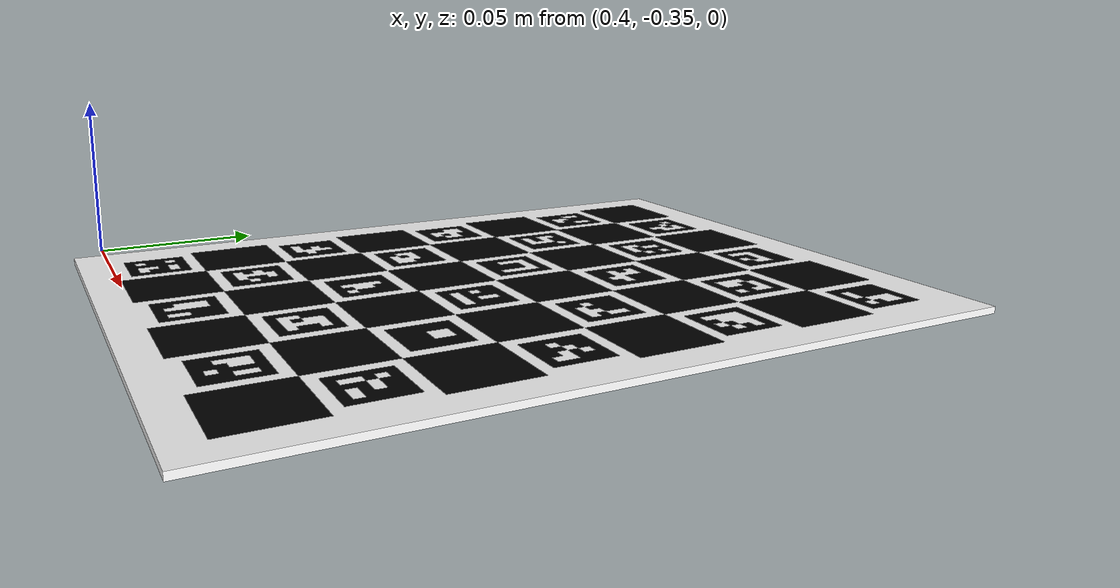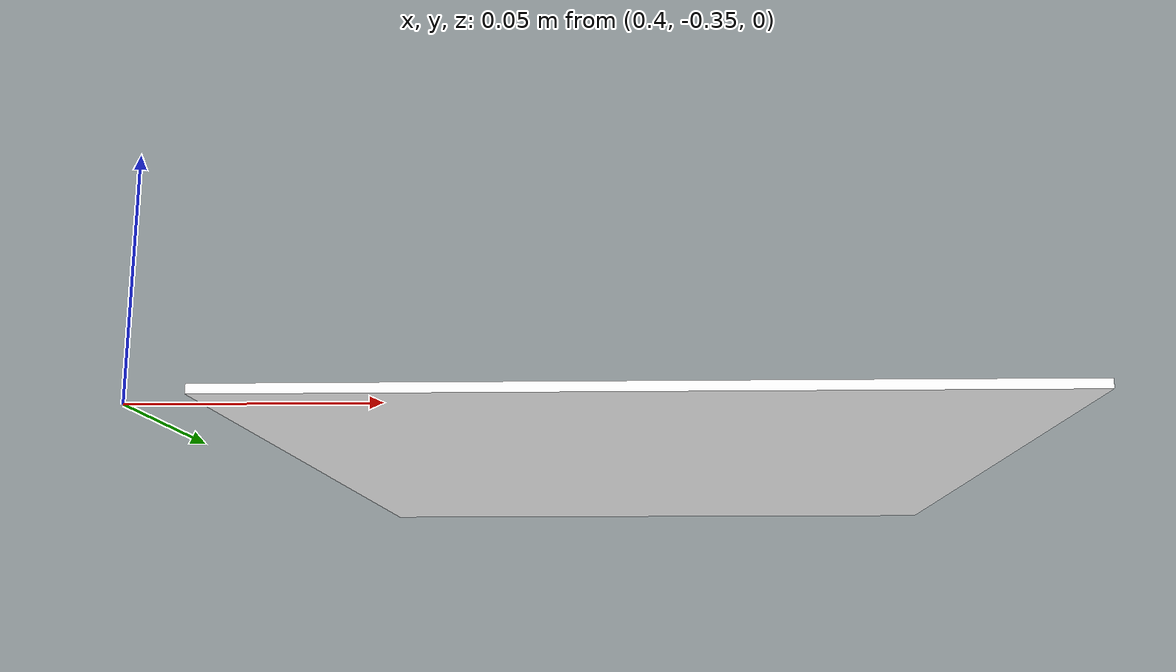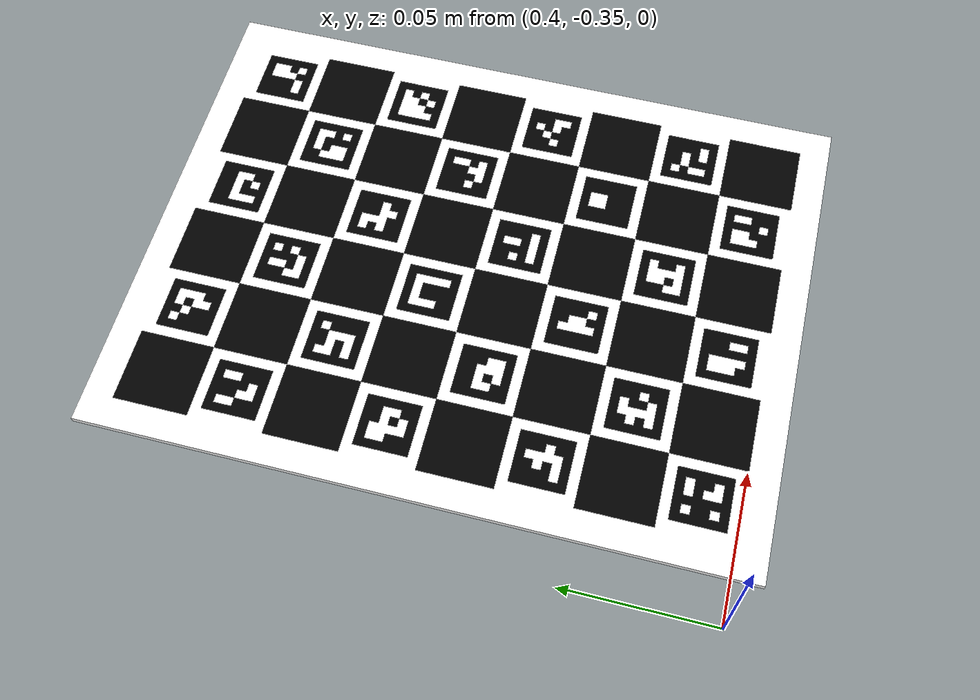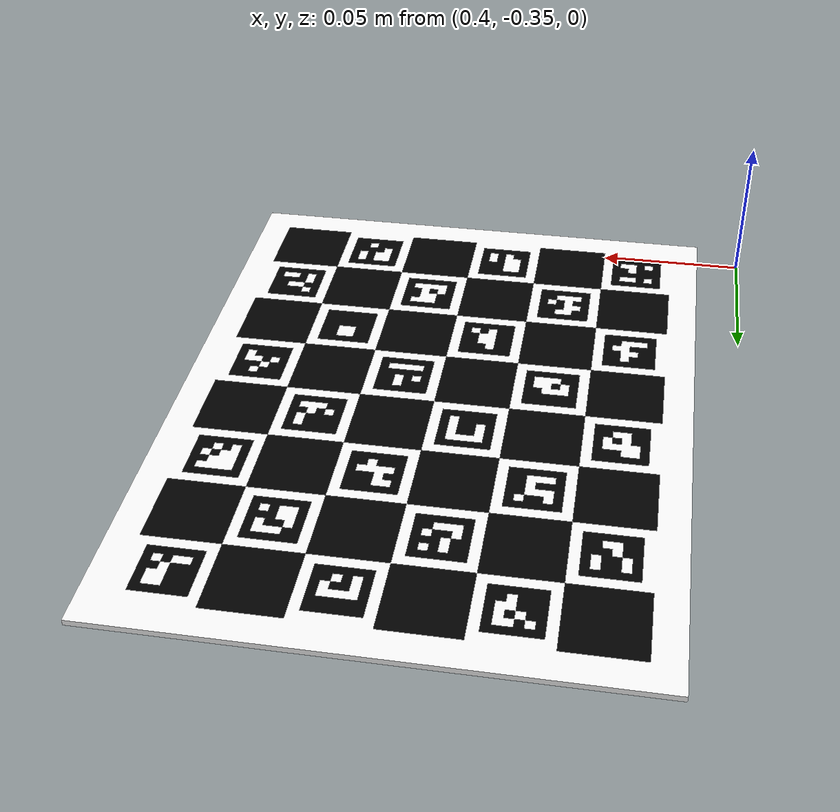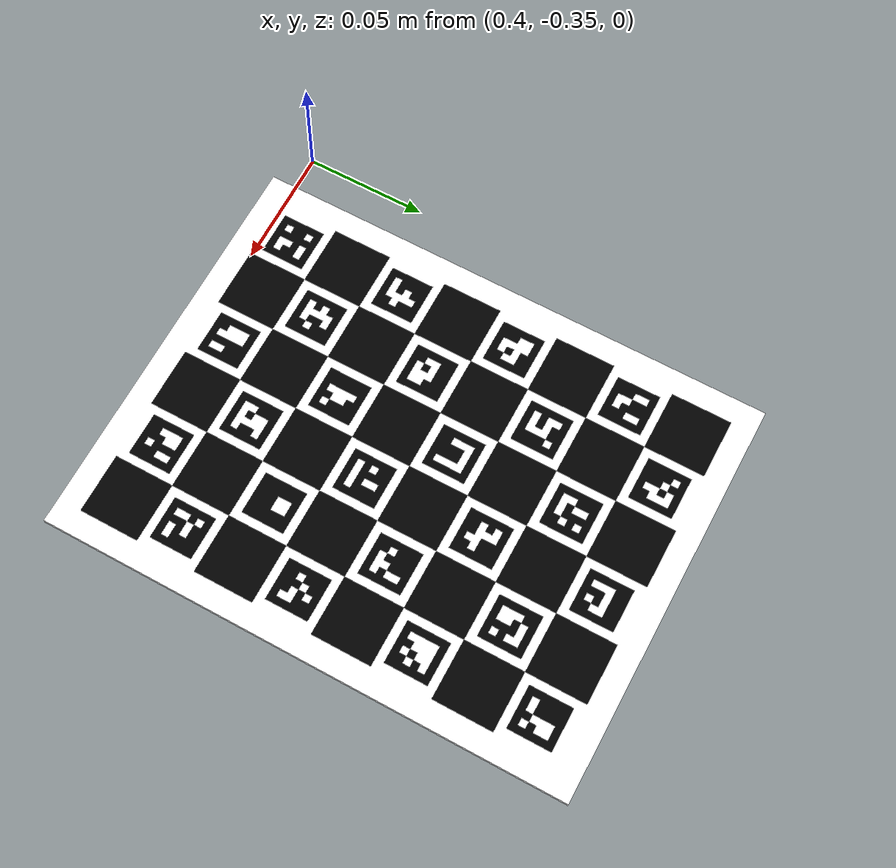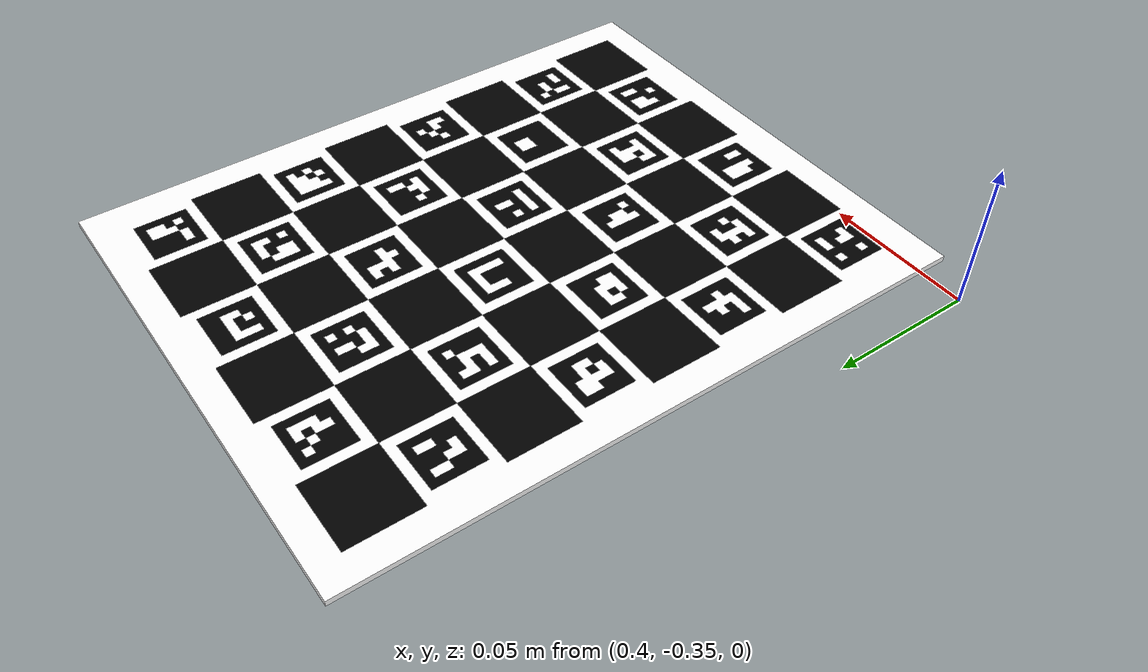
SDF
<?xml version="1.0"?>
<sdf version="1.8">
  <model name="charuco_board_6x8">
    <static>true</static>
    <pose>0.50 -0.25 0 0 0 0</pose>
    <link name="board">
      <collision name="plate"><pose>0 0 0.001 0 0 0</pose><geometry><box><size>0.170 0.220 0.002</size></box></geometry></collision>
      <visual name="white_backing"><pose>0 0 0.001 0 0 0</pose><geometry><box><size>0.170 0.220 0.002</size></box></geometry><material><ambient>1 1 1 1</ambient><diffuse>1 1 1 1</diffuse><specular>0 0 0 1</specular></material></visual>
      <visual name="charuco_pattern"><pose>0 0 0.00202 0 0 0</pose><cast_shadows>false</cast_shadows><geometry><mesh><uri>file:///root/arms_ws/src/robots/piper_ros/src/piper_sim/piper_gazebo/models/charuco_6x8_25mm/pattern.stl</uri></mesh></geometry><material><ambient>0 0 0 1</ambient><diffuse>0 0 0 1</diffuse><specular>0 0 0 1</specular></material></visual>
    </link>
  </model>
</sdf>
